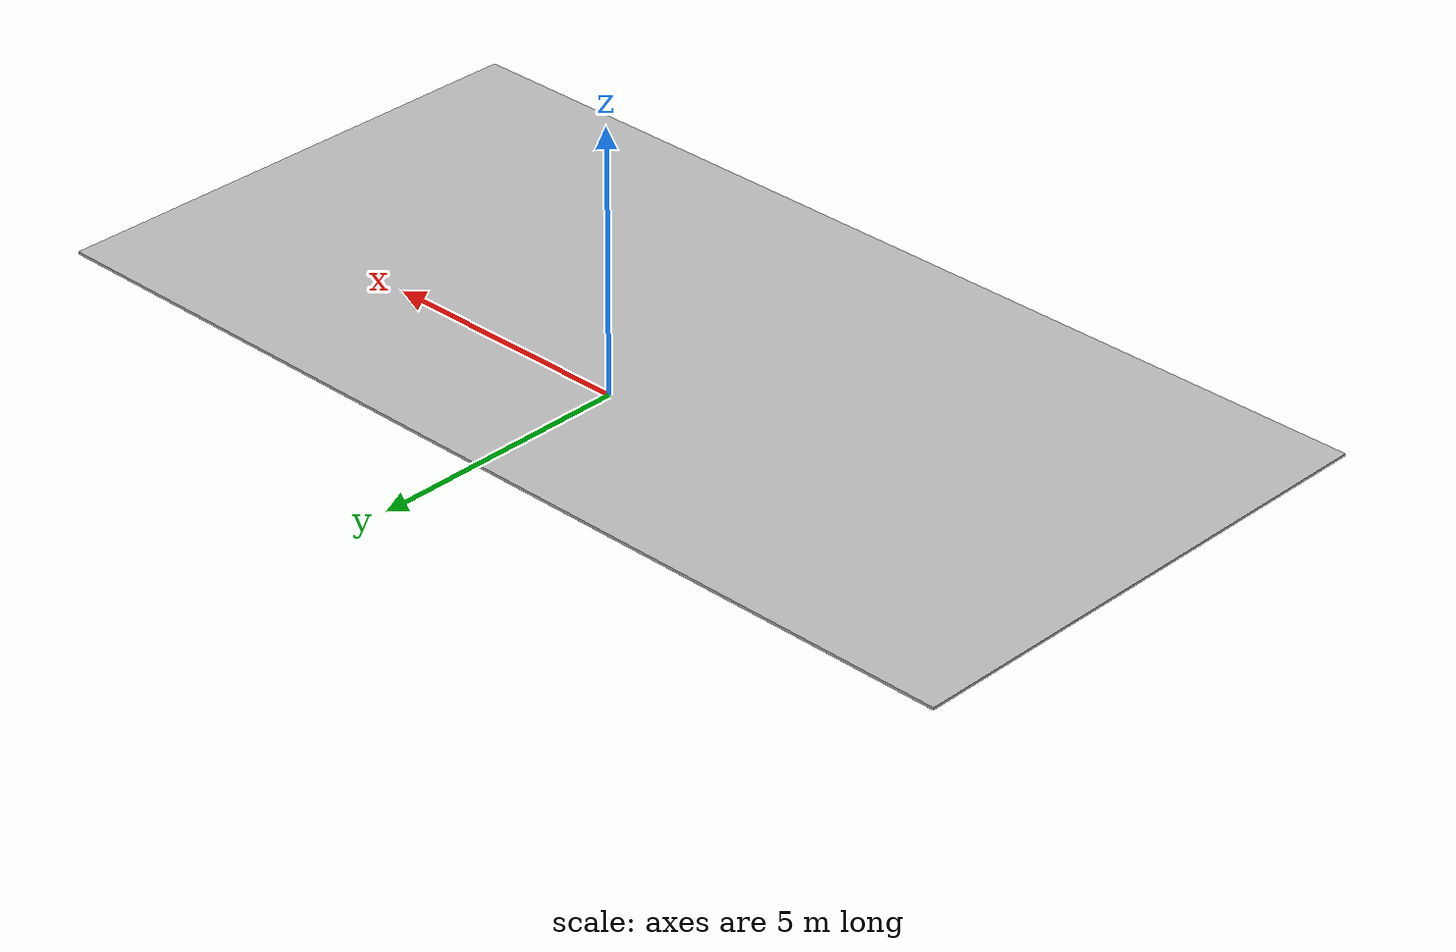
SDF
<?xml version='1.0'?>
<sdf version='1.6'>
  <model name='road1'>
    <pose frame=''>0.055 -1.95 0 0 -0 0</pose>
    <link name='Wall_0'>
      <collision name='Wall_0_Collision'>
        <geometry>
          <box>
            <size>19.85 10 0.05</size>
          </box>
        </geometry>
        <pose frame=''>0 0 0.025 0 -0 0</pose>
      </collision>
      <visual name='Wall_0_Visual'>
        <pose frame=''>0 0 0.025 0 -0 0</pose>
        <geometry>
          <box>
            <size>19.85 10 0.05</size>
          </box>
        </geometry>
        <material>
          <script>
            <uri>model://road1/materials/scripts</uri>
            <uri>model://road1/materials/textures</uri>
            <name>road1/Diffuse</name>
          </script>
        </material>
        <meta>
          <layer>0</layer>
        </meta>
      </visual>
      <pose frame=''>-0 -0 0 0 -0 0</pose>
    </link>
    <static>1</static>
  </model>
</sdf>
